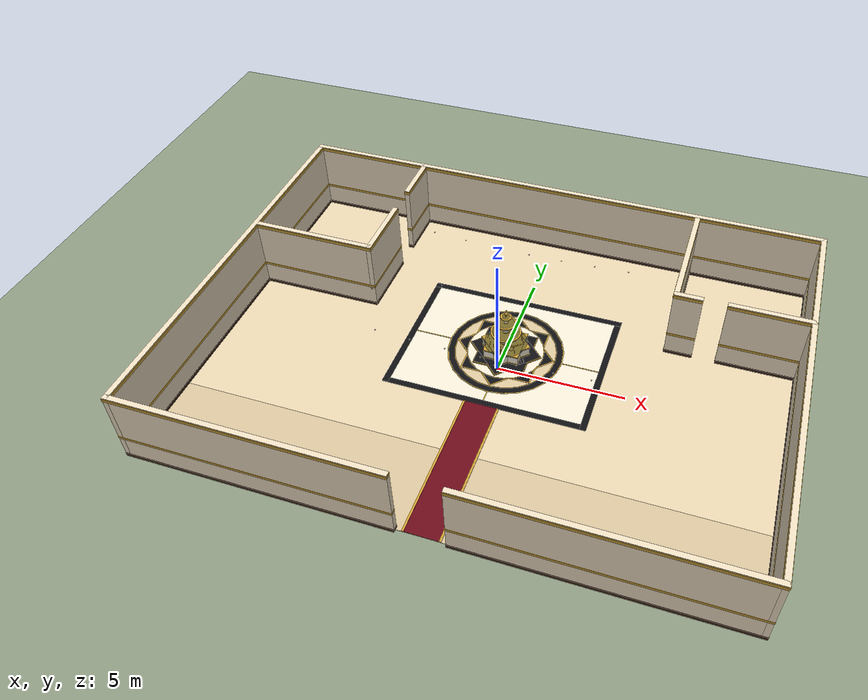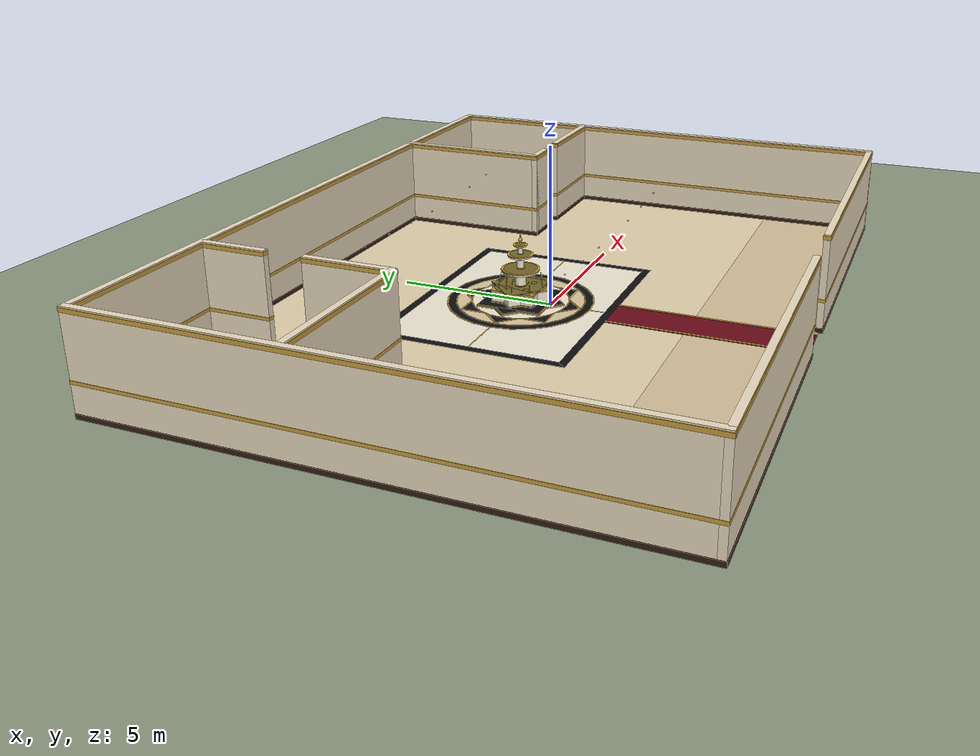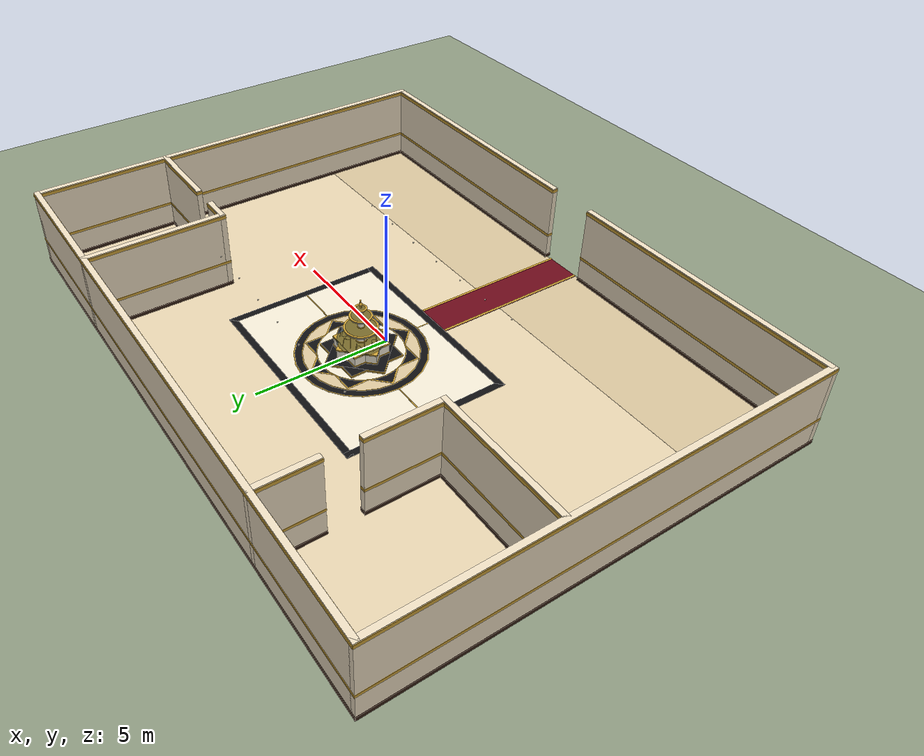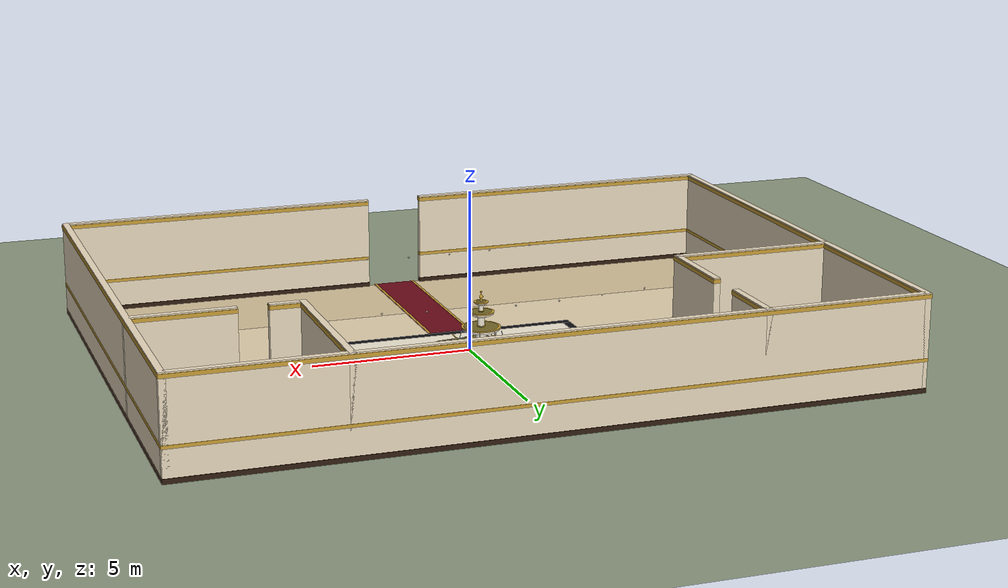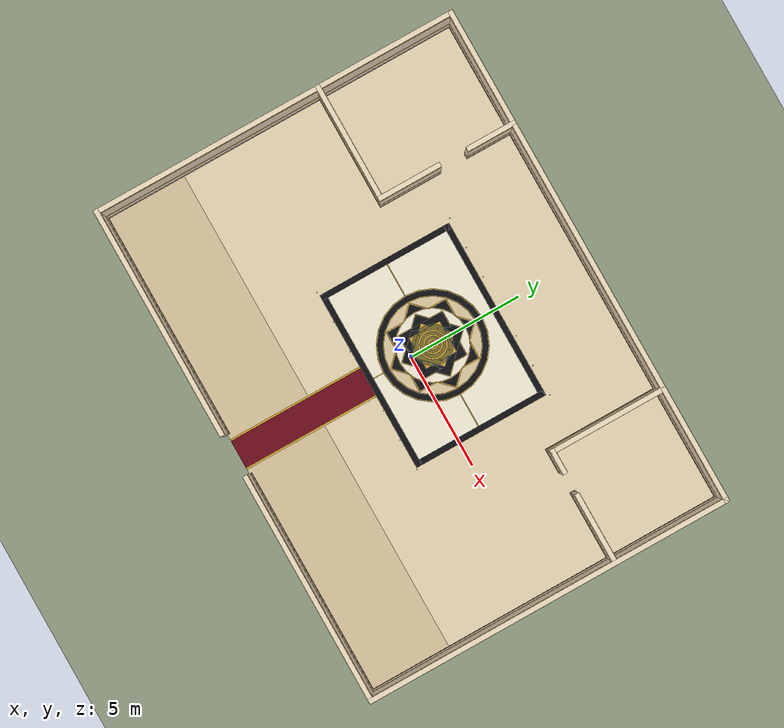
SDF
<sdf version="1.9">
 <world name="dar_tunibot">
  <model name="ground_plane">
   <static>true</static>
   <link name="link">
    <collision name="collision">
     <geometry><plane><normal>0 0 1</normal><size>60 60</size></plane></geometry>
    </collision>
    <visual name="visual">
     <geometry><plane><normal>0 0 1</normal><size>60 60</size></plane></geometry>
     <material><ambient>0.55 0.6 0.5 1</ambient><diffuse>0.55 0.6 0.5 1</diffuse></material>
    </visual>
   </link>
  </model>
  <model name="floors">
   <static>true</static>
   <link name="link">
    <visual name="floor_v">
     <pose>0.000 0.000 0.005 0.0000 0.0000 0.0000</pose>
     <geometry><box><size>22.000 16.000 0.010</size></box></geometry>
     <material>
      <ambient>0.9 0.83 0.69 1</ambient>
      <diffuse>0.9 0.83 0.69 1</diffuse>
      <specular>0.1 0.1 0.1 1</specular>
     </material>
    </visual>
    <visual name="terrace_v">
     <pose>0.000 -6.200 0.007 0.0000 0.0000 0.0000</pose>
     <geometry><box><size>22.000 3.600 0.010</size></box></geometry>
     <material>
      <ambient>0.84 0.76 0.61 1</ambient>
      <diffuse>0.84 0.76 0.61 1</diffuse>
      <specular>0.1 0.1 0.1 1</specular>
     </material>
    </visual>
    <visual name="court_ivory_v">
     <pose>0.000 1.000 0.011 0.0000 0.0000 0.0000</pose>
     <geometry><box><size>8.000 6.000 0.002</size></box></geometry>
     <material>
      <ambient>0.95 0.92 0.84 1</ambient>
      <diffuse>0.95 0.92 0.84 1</diffuse>
      <specular>0.1 0.1 0.1 1</specular>
     </material>
    </visual>
    <visual name="court_border0_v">
     <pose>0.000 3.875 0.013 0.0000 0.0000 0.0000</pose>
     <geometry><box><size>8.000 0.250 0.002</size></box></geometry>
     <material>
      <ambient>0.06 0.06 0.07 1</ambient>
      <diffuse>0.06 0.06 0.07 1</diffuse>
      <specular>0.1 0.1 0.1 1</specular>
     </material>
    </visual>
    <visual name="court_border1_v">
     <pose>0.000 -1.875 0.013 0.0000 0.0000 0.0000</pose>
     <geometry><box><size>8.000 0.250 0.002</size></box></geometry>
     <material>
      <ambient>0.06 0.06 0.07 1</ambient>
      <diffuse>0.06 0.06 0.07 1</diffuse>
      <specular>0.1 0.1 0.1 1</specular>
     </material>
    </visual>
    <visual name="court_border2_v">
     <pose>-3.875 1.000 0.013 0.0000 0.0000 0.0000</pose>
     <geometry><box><size>0.250 6.000 0.002</size></box></geometry>
     <material>
      <ambient>0.06 0.06 0.07 1</ambient>
      <diffuse>0.06 0.06 0.07 1</diffuse>
      <specular>0.1 0.1 0.1 1</specular>
     </material>
    </visual>
    <visual name="court_border3_v">
     <pose>3.875 1.000 0.013 0.0000 0.0000 0.0000</pose>
     <geometry><box><size>0.250 6.000 0.002</size></box></geometry>
     <material>
      <ambient>0.06 0.06 0.07 1</ambient>
      <diffuse>0.06 0.06 0.07 1</diffuse>
      <specular>0.1 0.1 0.1 1</specular>
     </material>
    </visual>
    <visual name="court_ray0_v">
     <pose>1.875 1.000 0.013 0.0000 0.0000 0.0000</pose>
     <geometry><box><size>3.750 0.040 0.002</size></box></geometry>
     <material>
      <ambient>0.8 0.63 0.21 1</ambient>
      <diffuse>0.8 0.63 0.21 1</diffuse>
      <specular>0.1 0.1 0.1 1</specular>
     </material>
    </visual>
    <visual name="court_ray1_v">
     <pose>-1.875 1.000 0.013 0.0000 0.0000 3.1416</pose>
     <geometry><box><size>3.750 0.040 0.002</size></box></geometry>
     <material>
      <ambient>0.8 0.63 0.21 1</ambient>
      <diffuse>0.8 0.63 0.21 1</diffuse>
      <specular>0.1 0.1 0.1 1</specular>
     </material>
    </visual>
    <visual name="court_ray2_v">
     <pose>0.000 2.375 0.013 0.0000 0.0000 1.5708</pose>
     <geometry><box><size>2.750 0.040 0.002</size></box></geometry>
     <material>
      <ambient>0.8 0.63 0.21 1</ambient>
      <diffuse>0.8 0.63 0.21 1</diffuse>
      <specular>0.1 0.1 0.1 1</specular>
     </material>
    </visual>
    <visual name="court_ray3_v">
     <pose>0.000 -0.375 0.013 0.0000 0.0000 -1.5708</pose>
     <geometry><box><size>2.750 0.040 0.002</size></box></geometry>
     <material>
      <ambient>0.8 0.63 0.21 1</ambient>
      <diffuse>0.8 0.63 0.21 1</diffuse>
      <specular>0.1 0.1 0.1 1</specular>
     </material>
    </visual>
    <visual name="medallion0_v">
     <pose>0.000 1.000 0.015 0.0000 0.0000 0.0000</pose>
     <geometry><cylinder><radius>2.300</radius><length>0.002</length></cylinder></geometry>
     <material>
      <ambient>0.8 0.63 0.21 1</ambient>
      <diffuse>0.8 0.63 0.21 1</diffuse>
      <specular>0.1 0.1 0.1 1</specular>
     </material>
    </visual>
    <visual name="medallion1_v">
     <pose>0.000 1.000 0.017 0.0000 0.0000 0.0000</pose>
     <geometry><cylinder><radius>2.260</radius><length>0.002</length></cylinder></geometry>
     <material>
      <ambient>0.06 0.06 0.07 1</ambient>
      <diffuse>0.06 0.06 0.07 1</diffuse>
      <specular>0.1 0.1 0.1 1</specular>
     </material>
    </visual>
    <visual name="medallion2_v">
     <pose>0.000 1.000 0.019 0.0000 0.0000 0.0000</pose>
     <geometry><cylinder><radius>2.020</radius><length>0.002</length></cylinder></geometry>
     <material>
      <ambient>0.8 0.63 0.21 1</ambient>
      <diffuse>0.8 0.63 0.21 1</diffuse>
      <specular>0.1 0.1 0.1 1</specular>
     </material>
    </visual>
    <visual name="medallion3_v">
     <pose>0.000 1.000 0.021 0.0000 0.0000 0.0000</pose>
     <geometry><cylinder><radius>1.990</radius><length>0.002</length></cylinder></geometry>
     <material>
      <ambient>0.86 0.78 0.62 1</ambient>
      <diffuse>0.86 0.78 0.62 1</diffuse>
      <specular>0.1 0.1 0.1 1</specular>
     </material>
    </visual>
    <visual name="star0_0_v">
     <pose>0.000 1.000 0.023 0.0000 0.0000 0.0000</pose>
     <geometry><box><size>2.800 2.800 0.002</size></box></geometry>
     <material>
      <ambient>0.8 0.63 0.21 1</ambient>
      <diffuse>0.8 0.63 0.21 1</diffuse>
      <specular>0.1 0.1 0.1 1</specular>
     </material>
    </visual>
    <visual name="star0_1_v">
     <pose>0.000 1.000 0.023 0.0000 0.0000 0.7854</pose>
     <geometry><box><size>2.800 2.800 0.002</size></box></geometry>
     <material>
      <ambient>0.8 0.63 0.21 1</ambient>
      <diffuse>0.8 0.63 0.21 1</diffuse>
      <specular>0.1 0.1 0.1 1</specular>
     </material>
    </visual>
    <visual name="star1_0_v">
     <pose>0.000 1.000 0.025 0.0000 0.0000 0.0000</pose>
     <geometry><box><size>2.700 2.700 0.002</size></box></geometry>
     <material>
      <ambient>0.06 0.06 0.07 1</ambient>
      <diffuse>0.06 0.06 0.07 1</diffuse>
      <specular>0.1 0.1 0.1 1</specular>
     </material>
    </visual>
    <visual name="star1_1_v">
     <pose>0.000 1.000 0.025 0.0000 0.0000 0.7854</pose>
     <geometry><box><size>2.700 2.700 0.002</size></box></geometry>
     <material>
      <ambient>0.06 0.06 0.07 1</ambient>
      <diffuse>0.06 0.06 0.07 1</diffuse>
      <specular>0.1 0.1 0.1 1</specular>
     </material>
    </visual>
    <visual name="medallion_gold_ring_v">
     <pose>0.000 1.000 0.027 0.0000 0.0000 0.0000</pose>
     <geometry><cylinder><radius>1.530</radius><length>0.002</length></cylinder></geometry>
     <material>
      <ambient>0.8 0.63 0.21 1</ambient>
      <diffuse>0.8 0.63 0.21 1</diffuse>
      <specular>0.1 0.1 0.1 1</specular>
     </material>
    </visual>
    <visual name="medallion_centre_v">
     <pose>0.000 1.000 0.029 0.0000 0.0000 0.0000</pose>
     <geometry><cylinder><radius>1.500</radius><length>0.002</length></cylinder></geometry>
     <material>
      <ambient>0.95 0.92 0.84 1</ambient>
      <diffuse>0.95 0.92 0.84 1</diffuse>
      <specular>0.1 0.1 0.1 1</specular>
     </material>
    </visual>
    <visual name="carpet_v">
     <pose>0.000 -5.000 0.020 0.0000 0.0000 0.0000</pose>
     <geometry><box><size>1.400 6.000 0.020</size></box></geometry>
     <material>
      <ambient>0.42 0.04 0.1 1</ambient>
      <diffuse>0.42 0.04 0.1 1</diffuse>
      <specular>0.1 0.1 0.1 1</specular>
     </material>
    </visual>
    <visual name="carpet_edge_-1_v">
     <pose>-0.660 -5.000 0.031 0.0000 0.0000 0.0000</pose>
     <geometry><box><size>0.080 6.000 0.020</size></box></geometry>
     <material>
      <ambient>0.8 0.63 0.21 1</ambient>
      <diffuse>0.8 0.63 0.21 1</diffuse>
      <specular>0.1 0.1 0.1 1</specular>
     </material>
    </visual>
    <visual name="carpet_edge_1_v">
     <pose>0.660 -5.000 0.031 0.0000 0.0000 0.0000</pose>
     <geometry><box><size>0.080 6.000 0.020</size></box></geometry>
     <material>
      <ambient>0.8 0.63 0.21 1</ambient>
      <diffuse>0.8 0.63 0.21 1</diffuse>
      <specular>0.1 0.1 0.1 1</specular>
     </material>
    </visual>
   </link>
  </model>
  <model name="dar_walls">
   <static>true</static>
   <link name="link">
    <visual name="wall0_v">
     <pose>0.000 8.000 1.500 0.0000 0.0000 0.0000</pose>
     <geometry><box><size>22.200 0.200 3.000</size></box></geometry>
     <material>
      <ambient>0.93 0.87 0.76 1</ambient>
      <diffuse>0.93 0.87 0.76 1</diffuse>
      <specular>0.1 0.1 0.1 1</specular>
     </material>
    </visual>
    <collision name="wall0_c">
     <pose>0.000 8.000 1.500 0.0000 0.0000 0.0000</pose>
     <geometry><box><size>22.200 0.200 3.000</size></box></geometry>
    </collision>
    <visual name="skirting0_v">
     <pose>0.000 8.000 0.075 0.0000 0.0000 0.0000</pose>
     <geometry><box><size>22.210 0.230 0.150</size></box></geometry>
     <material>
      <ambient>0.2 0.12 0.07 1</ambient>
      <diffuse>0.2 0.12 0.07 1</diffuse>
      <specular>0.1 0.1 0.1 1</specular>
     </material>
    </visual>
    <visual name="rail0_v">
     <pose>0.000 8.000 1.000 0.0000 0.0000 0.0000</pose>
     <geometry><box><size>22.210 0.220 0.100</size></box></geometry>
     <material>
      <ambient>0.8 0.63 0.21 1</ambient>
      <diffuse>0.8 0.63 0.21 1</diffuse>
      <specular>0.1 0.1 0.1 1</specular>
     </material>
    </visual>
    <visual name="crown0_v">
     <pose>0.000 8.000 2.900 0.0000 0.0000 0.0000</pose>
     <geometry><box><size>22.210 0.230 0.120</size></box></geometry>
     <material>
      <ambient>0.8 0.63 0.21 1</ambient>
      <diffuse>0.8 0.63 0.21 1</diffuse>
      <specular>0.1 0.1 0.1 1</specular>
     </material>
    </visual>
    <visual name="wall1_v">
     <pose>-11.000 0.000 1.500 0.0000 0.0000 1.5708</pose>
     <geometry><box><size>16.200 0.200 3.000</size></box></geometry>
     <material>
      <ambient>0.93 0.87 0.76 1</ambient>
      <diffuse>0.93 0.87 0.76 1</diffuse>
      <specular>0.1 0.1 0.1 1</specular>
     </material>
    </visual>
    <collision name="wall1_c">
     <pose>-11.000 0.000 1.500 0.0000 0.0000 1.5708</pose>
     <geometry><box><size>16.200 0.200 3.000</size></box></geometry>
    </collision>
    <visual name="skirting1_v">
     <pose>-11.000 0.000 0.075 0.0000 0.0000 1.5708</pose>
     <geometry><box><size>16.210 0.230 0.150</size></box></geometry>
     <material>
      <ambient>0.2 0.12 0.07 1</ambient>
      <diffuse>0.2 0.12 0.07 1</diffuse>
      <specular>0.1 0.1 0.1 1</specular>
     </material>
    </visual>
    <visual name="rail1_v">
     <pose>-11.000 0.000 1.000 0.0000 0.0000 1.5708</pose>
     <geometry><box><size>16.210 0.220 0.100</size></box></geometry>
     <material>
      <ambient>0.8 0.63 0.21 1</ambient>
      <diffuse>0.8 0.63 0.21 1</diffuse>
      <specular>0.1 0.1 0.1 1</specular>
     </material>
    </visual>
    <visual name="crown1_v">
     <pose>-11.000 0.000 2.900 0.0000 0.0000 1.5708</pose>
     <geometry><box><size>16.210 0.230 0.120</size></box></geometry>
     <material>
      <ambient>0.8 0.63 0.21 1</ambient>
      <diffuse>0.8 0.63 0.21 1</diffuse>
      <specular>0.1 0.1 0.1 1</specular>
     </material>
    </visual>
    <visual name="wall2_v">
     <pose>11.000 0.000 1.500 0.0000 0.0000 1.5708</pose>
     <geometry><box><size>16.200 0.200 3.000</size></box></geometry>
     <material>
      <ambient>0.93 0.87 0.76 1</ambient>
      <diffuse>0.93 0.87 0.76 1</diffuse>
      <specular>0.1 0.1 0.1 1</specular>
     </material>
    </visual>
    <collision name="wall2_c">
     <pose>11.000 0.000 1.500 0.0000 0.0000 1.5708</pose>
     <geometry><box><size>16.200 0.200 3.000</size></box></geometry>
    </collision>
    <visual name="skirting2_v">
     <pose>11.000 0.000 0.075 0.0000 0.0000 1.5708</pose>
     <geometry><box><size>16.210 0.230 0.150</size></box></geometry>
     <material>
      <ambient>0.2 0.12 0.07 1</ambient>
      <diffuse>0.2 0.12 0.07 1</diffuse>
      <specular>0.1 0.1 0.1 1</specular>
     </material>
    </visual>
    <visual name="rail2_v">
     <pose>11.000 0.000 1.000 0.0000 0.0000 1.5708</pose>
     <geometry><box><size>16.210 0.220 0.100</size></box></geometry>
     <material>
      <ambient>0.8 0.63 0.21 1</ambient>
      <diffuse>0.8 0.63 0.21 1</diffuse>
      <specular>0.1 0.1 0.1 1</specular>
     </material>
    </visual>
    <visual name="crown2_v">
     <pose>11.000 0.000 2.900 0.0000 0.0000 1.5708</pose>
     <geometry><box><size>16.210 0.230 0.120</size></box></geometry>
     <material>
      <ambient>0.8 0.63 0.21 1</ambient>
      <diffuse>0.8 0.63 0.21 1</diffuse>
      <specular>0.1 0.1 0.1 1</specular>
     </material>
    </visual>
    <visual name="wall3_v">
     <pose>-6.000 -8.000 1.500 0.0000 0.0000 0.0000</pose>
     <geometry><box><size>10.200 0.200 3.000</size></box></geometry>
     <material>
      <ambient>0.93 0.87 0.76 1</ambient>
      <diffuse>0.93 0.87 0.76 1</diffuse>
      <specular>0.1 0.1 0.1 1</specular>
     </material>
    </visual>
    <collision name="wall3_c">
     <pose>-6.000 -8.000 1.500 0.0000 0.0000 0.0000</pose>
     <geometry><box><size>10.200 0.200 3.000</size></box></geometry>
    </collision>
    <visual name="skirting3_v">
     <pose>-6.000 -8.000 0.075 0.0000 0.0000 0.0000</pose>
     <geometry><box><size>10.210 0.230 0.150</size></box></geometry>
     <material>
      <ambient>0.2 0.12 0.07 1</ambient>
      <diffuse>0.2 0.12 0.07 1</diffuse>
      <specular>0.1 0.1 0.1 1</specular>
     </material>
    </visual>
    <visual name="rail3_v">
     <pose>-6.000 -8.000 1.000 0.0000 0.0000 0.0000</pose>
     <geometry><box><size>10.210 0.220 0.100</size></box></geometry>
     <material>
      <ambient>0.8 0.63 0.21 1</ambient>
      <diffuse>0.8 0.63 0.21 1</diffuse>
      <specular>0.1 0.1 0.1 1</specular>
     </material>
    </visual>
    <visual name="crown3_v">
     <pose>-6.000 -8.000 2.900 0.0000 0.0000 0.0000</pose>
     <geometry><box><size>10.210 0.230 0.120</size></box></geometry>
     <material>
      <ambient>0.8 0.63 0.21 1</ambient>
      <diffuse>0.8 0.63 0.21 1</diffuse>
      <specular>0.1 0.1 0.1 1</specular>
     </material>
    </visual>
    <visual name="wall4_v">
     <pose>6.000 -8.000 1.500 0.0000 0.0000 0.0000</pose>
     <geometry><box><size>10.200 0.200 3.000</size></box></geometry>
     <material>
      <ambient>0.93 0.87 0.76 1</ambient>
      <diffuse>0.93 0.87 0.76 1</diffuse>
      <specular>0.1 0.1 0.1 1</specular>
     </material>
    </visual>
    <collision name="wall4_c">
     <pose>6.000 -8.000 1.500 0.0000 0.0000 0.0000</pose>
     <geometry><box><size>10.200 0.200 3.000</size></box></geometry>
    </collision>
    <visual name="skirting4_v">
     <pose>6.000 -8.000 0.075 0.0000 0.0000 0.0000</pose>
     <geometry><box><size>10.210 0.230 0.150</size></box></geometry>
     <material>
      <ambient>0.2 0.12 0.07 1</ambient>
      <diffuse>0.2 0.12 0.07 1</diffuse>
      <specular>0.1 0.1 0.1 1</specular>
     </material>
    </visual>
    <visual name="rail4_v">
     <pose>6.000 -8.000 1.000 0.0000 0.0000 0.0000</pose>
     <geometry><box><size>10.210 0.220 0.100</size></box></geometry>
     <material>
      <ambient>0.8 0.63 0.21 1</ambient>
      <diffuse>0.8 0.63 0.21 1</diffuse>
      <specular>0.1 0.1 0.1 1</specular>
     </material>
    </visual>
    <visual name="crown4_v">
     <pose>6.000 -8.000 2.900 0.0000 0.0000 0.0000</pose>
     <geometry><box><size>10.210 0.230 0.120</size></box></geometry>
     <material>
      <ambient>0.8 0.63 0.21 1</ambient>
      <diffuse>0.8 0.63 0.21 1</diffuse>
      <specular>0.1 0.1 0.1 1</specular>
     </material>
    </visual>
    <visual name="wall5_v">
     <pose>-8.500 2.000 1.500 0.0000 0.0000 0.0000</pose>
     <geometry><box><size>5.200 0.200 3.000</size></box></geometry>
     <material>
      <ambient>0.93 0.87 0.76 1</ambient>
      <diffuse>0.93 0.87 0.76 1</diffuse>
      <specular>0.1 0.1 0.1 1</specular>
     </material>
    </visual>
    <collision name="wall5_c">
     <pose>-8.500 2.000 1.500 0.0000 0.0000 0.0000</pose>
     <geometry><box><size>5.200 0.200 3.000</size></box></geometry>
    </collision>
    <visual name="skirting5_v">
     <pose>-8.500 2.000 0.075 0.0000 0.0000 0.0000</pose>
     <geometry><box><size>5.210 0.230 0.150</size></box></geometry>
     <material>
      <ambient>0.2 0.12 0.07 1</ambient>
      <diffuse>0.2 0.12 0.07 1</diffuse>
      <specular>0.1 0.1 0.1 1</specular>
     </material>
    </visual>
    <visual name="rail5_v">
     <pose>-8.500 2.000 1.000 0.0000 0.0000 0.0000</pose>
     <geometry><box><size>5.210 0.220 0.100</size></box></geometry>
     <material>
      <ambient>0.8 0.63 0.21 1</ambient>
      <diffuse>0.8 0.63 0.21 1</diffuse>
      <specular>0.1 0.1 0.1 1</specular>
     </material>
    </visual>
    <visual name="crown5_v">
     <pose>-8.500 2.000 2.900 0.0000 0.0000 0.0000</pose>
     <geometry><box><size>5.210 0.230 0.120</size></box></geometry>
     <material>
      <ambient>0.8 0.63 0.21 1</ambient>
      <diffuse>0.8 0.63 0.21 1</diffuse>
      <specular>0.1 0.1 0.1 1</specular>
     </material>
    </visual>
    <visual name="wall6_v">
     <pose>-6.000 3.300 1.500 0.0000 0.0000 1.5708</pose>
     <geometry><box><size>2.800 0.200 3.000</size></box></geometry>
     <material>
      <ambient>0.93 0.87 0.76 1</ambient>
      <diffuse>0.93 0.87 0.76 1</diffuse>
      <specular>0.1 0.1 0.1 1</specular>
     </material>
    </visual>
    <collision name="wall6_c">
     <pose>-6.000 3.300 1.500 0.0000 0.0000 1.5708</pose>
     <geometry><box><size>2.800 0.200 3.000</size></box></geometry>
    </collision>
    <visual name="skirting6_v">
     <pose>-6.000 3.300 0.075 0.0000 0.0000 1.5708</pose>
     <geometry><box><size>2.810 0.230 0.150</size></box></geometry>
     <material>
      <ambient>0.2 0.12 0.07 1</ambient>
      <diffuse>0.2 0.12 0.07 1</diffuse>
      <specular>0.1 0.1 0.1 1</specular>
     </material>
    </visual>
    <visual name="rail6_v">
     <pose>-6.000 3.300 1.000 0.0000 0.0000 1.5708</pose>
     <geometry><box><size>2.810 0.220 0.100</size></box></geometry>
     <material>
      <ambient>0.8 0.63 0.21 1</ambient>
      <diffuse>0.8 0.63 0.21 1</diffuse>
      <specular>0.1 0.1 0.1 1</specular>
     </material>
    </visual>
    <visual name="crown6_v">
     <pose>-6.000 3.300 2.900 0.0000 0.0000 1.5708</pose>
     <geometry><box><size>2.810 0.230 0.120</size></box></geometry>
     <material>
      <ambient>0.8 0.63 0.21 1</ambient>
      <diffuse>0.8 0.63 0.21 1</diffuse>
      <specular>0.1 0.1 0.1 1</specular>
     </material>
    </visual>
    <visual name="wall7_v">
     <pose>-6.000 7.000 1.500 0.0000 0.0000 1.5708</pose>
     <geometry><box><size>2.200 0.200 3.000</size></box></geometry>
     <material>
      <ambient>0.93 0.87 0.76 1</ambient>
      <diffuse>0.93 0.87 0.76 1</diffuse>
      <specular>0.1 0.1 0.1 1</specular>
     </material>
    </visual>
    <collision name="wall7_c">
     <pose>-6.000 7.000 1.500 0.0000 0.0000 1.5708</pose>
     <geometry><box><size>2.200 0.200 3.000</size></box></geometry>
    </collision>
    <visual name="skirting7_v">
     <pose>-6.000 7.000 0.075 0.0000 0.0000 1.5708</pose>
     <geometry><box><size>2.210 0.230 0.150</size></box></geometry>
     <material>
      <ambient>0.2 0.12 0.07 1</ambient>
      <diffuse>0.2 0.12 0.07 1</diffuse>
      <specular>0.1 0.1 0.1 1</specular>
     </material>
    </visual>
    <visual name="rail7_v">
     <pose>-6.000 7.000 1.000 0.0000 0.0000 1.5708</pose>
     <geometry><box><size>2.210 0.220 0.100</size></box></geometry>
     <material>
      <ambient>0.8 0.63 0.21 1</ambient>
      <diffuse>0.8 0.63 0.21 1</diffuse>
      <specular>0.1 0.1 0.1 1</specular>
     </material>
    </visual>
    <visual name="crown7_v">
     <pose>-6.000 7.000 2.900 0.0000 0.0000 1.5708</pose>
     <geometry><box><size>2.210 0.230 0.120</size></box></geometry>
     <material>
      <ambient>0.8 0.63 0.21 1</ambient>
      <diffuse>0.8 0.63 0.21 1</diffuse>
      <specular>0.1 0.1 0.1 1</specular>
     </material>
    </visual>
    <visual name="wall8_v">
     <pose>6.000 5.500 1.500 0.0000 0.0000 1.5708</pose>
     <geometry><box><size>5.200 0.200 3.000</size></box></geometry>
     <material>
      <ambient>0.93 0.87 0.76 1</ambient>
      <diffuse>0.93 0.87 0.76 1</diffuse>
      <specular>0.1 0.1 0.1 1</specular>
     </material>
    </visual>
    <collision name="wall8_c">
     <pose>6.000 5.500 1.500 0.0000 0.0000 1.5708</pose>
     <geometry><box><size>5.200 0.200 3.000</size></box></geometry>
    </collision>
    <visual name="skirting8_v">
     <pose>6.000 5.500 0.075 0.0000 0.0000 1.5708</pose>
     <geometry><box><size>5.210 0.230 0.150</size></box></geometry>
     <material>
      <ambient>0.2 0.12 0.07 1</ambient>
      <diffuse>0.2 0.12 0.07 1</diffuse>
      <specular>0.1 0.1 0.1 1</specular>
     </material>
    </visual>
    <visual name="rail8_v">
     <pose>6.000 5.500 1.000 0.0000 0.0000 1.5708</pose>
     <geometry><box><size>5.210 0.220 0.100</size></box></geometry>
     <material>
      <ambient>0.8 0.63 0.21 1</ambient>
      <diffuse>0.8 0.63 0.21 1</diffuse>
      <specular>0.1 0.1 0.1 1</specular>
     </material>
    </visual>
    <visual name="crown8_v">
     <pose>6.000 5.500 2.900 0.0000 0.0000 1.5708</pose>
     <geometry><box><size>5.210 0.230 0.120</size></box></geometry>
     <material>
      <ambient>0.8 0.63 0.21 1</ambient>
      <diffuse>0.8 0.63 0.21 1</diffuse>
      <specular>0.1 0.1 0.1 1</specular>
     </material>
    </visual>
    <visual name="wall9_v">
     <pose>6.450 3.000 1.500 0.0000 0.0000 0.0000</pose>
     <geometry><box><size>1.100 0.200 3.000</size></box></geometry>
     <material>
      <ambient>0.93 0.87 0.76 1</ambient>
      <diffuse>0.93 0.87 0.76 1</diffuse>
      <specular>0.1 0.1 0.1 1</specular>
     </material>
    </visual>
    <collision name="wall9_c">
     <pose>6.450 3.000 1.500 0.0000 0.0000 0.0000</pose>
     <geometry><box><size>1.100 0.200 3.000</size></box></geometry>
    </collision>
    <visual name="skirting9_v">
     <pose>6.450 3.000 0.075 0.0000 0.0000 0.0000</pose>
     <geometry><box><size>1.110 0.230 0.150</size></box></geometry>
     <material>
      <ambient>0.2 0.12 0.07 1</ambient>
      <diffuse>0.2 0.12 0.07 1</diffuse>
      <specular>0.1 0.1 0.1 1</specular>
     </material>
    </visual>
    <visual name="rail9_v">
     <pose>6.450 3.000 1.000 0.0000 0.0000 0.0000</pose>
     <geometry><box><size>1.110 0.220 0.100</size></box></geometry>
     <material>
      <ambient>0.8 0.63 0.21 1</ambient>
      <diffuse>0.8 0.63 0.21 1</diffuse>
      <specular>0.1 0.1 0.1 1</specular>
     </material>
    </visual>
    <visual name="crown9_v">
     <pose>6.450 3.000 2.900 0.0000 0.0000 0.0000</pose>
     <geometry><box><size>1.110 0.230 0.120</size></box></geometry>
     <material>
      <ambient>0.8 0.63 0.21 1</ambient>
      <diffuse>0.8 0.63 0.21 1</diffuse>
      <specular>0.1 0.1 0.1 1</specular>
     </material>
    </visual>
    <visual name="wall10_v">
     <pose>9.500 3.000 1.500 0.0000 0.0000 0.0000</pose>
     <geometry><box><size>3.200 0.200 3.000</size></box></geometry>
     <material>
      <ambient>0.93 0.87 0.76 1</ambient>
      <diffuse>0.93 0.87 0.76 1</diffuse>
      <specular>0.1 0.1 0.1 1</specular>
     </material>
    </visual>
    <collision name="wall10_c">
     <pose>9.500 3.000 1.500 0.0000 0.0000 0.0000</pose>
     <geometry><box><size>3.200 0.200 3.000</size></box></geometry>
    </collision>
    <visual name="skirting10_v">
     <pose>9.500 3.000 0.075 0.0000 0.0000 0.0000</pose>
     <geometry><box><size>3.210 0.230 0.150</size></box></geometry>
     <material>
      <ambient>0.2 0.12 0.07 1</ambient>
      <diffuse>0.2 0.12 0.07 1</diffuse>
      <specular>0.1 0.1 0.1 1</specular>
     </material>
    </visual>
    <visual name="rail10_v">
     <pose>9.500 3.000 1.000 0.0000 0.0000 0.0000</pose>
     <geometry><box><size>3.210 0.220 0.100</size></box></geometry>
     <material>
      <ambient>0.8 0.63 0.21 1</ambient>
      <diffuse>0.8 0.63 0.21 1</diffuse>
      <specular>0.1 0.1 0.1 1</specular>
     </material>
    </visual>
    <visual name="crown10_v">
     <pose>9.500 3.000 2.900 0.0000 0.0000 0.0000</pose>
     <geometry><box><size>3.210 0.230 0.120</size></box></geometry>
     <material>
      <ambient>0.8 0.63 0.21 1</ambient>
      <diffuse>0.8 0.63 0.21 1</diffuse>
      <specular>0.1 0.1 0.1 1</specular>
     </material>
    </visual>
   </link>
  </model>
  <model name="fountain">
   <static>true</static>
   <pose>0.0 1.0 0 0 0 0</pose>
   <link name="link">
    <visual name="step_trim_0_v">
     <pose>0.000 0.000 0.055 0.0000 0.0000 0.0000</pose>
     <geometry><box><size>2.060 2.060 0.050</size></box></geometry>
     <material>
      <ambient>0.8 0.63 0.21 1</ambient>
      <diffuse>0.8 0.63 0.21 1</diffuse>
      <specular>0.1 0.1 0.1 1</specular>
     </material>
    </visual>
    <visual name="step_trim_1_v">
     <pose>0.000 0.000 0.055 0.0000 0.0000 0.7854</pose>
     <geometry><box><size>2.060 2.060 0.050</size></box></geometry>
     <material>
      <ambient>0.8 0.63 0.21 1</ambient>
      <diffuse>0.8 0.63 0.21 1</diffuse>
      <specular>0.1 0.1 0.1 1</specular>
     </material>
    </visual>
    <visual name="step_0_v">
     <pose>0.000 0.000 0.065 0.0000 0.0000 0.0000</pose>
     <geometry><box><size>2.000 2.000 0.070</size></box></geometry>
     <material>
      <ambient>0.06 0.06 0.07 1</ambient>
      <diffuse>0.06 0.06 0.07 1</diffuse>
      <specular>0.1 0.1 0.1 1</specular>
     </material>
    </visual>
    <visual name="step_1_v">
     <pose>0.000 0.000 0.065 0.0000 0.0000 0.7854</pose>
     <geometry><box><size>2.000 2.000 0.070</size></box></geometry>
     <material>
      <ambient>0.06 0.06 0.07 1</ambient>
      <diffuse>0.06 0.06 0.07 1</diffuse>
      <specular>0.1 0.1 0.1 1</specular>
     </material>
    </visual>
    <visual name="basin_0_v">
     <pose>0.000 0.000 0.250 0.0000 0.0000 0.0000</pose>
     <geometry><box><size>1.360 1.360 0.500</size></box></geometry>
     <material>
      <ambient>0.95 0.92 0.84 1</ambient>
      <diffuse>0.95 0.92 0.84 1</diffuse>
      <specular>0.1 0.1 0.1 1</specular>
     </material>
    </visual>
    <collision name="basin_0_c">
     <pose>0.000 0.000 0.250 0.0000 0.0000 0.0000</pose>
     <geometry><box><size>1.360 1.360 0.500</size></box></geometry>
    </collision>
    <visual name="basin_1_v">
     <pose>0.000 0.000 0.250 0.0000 0.0000 0.7854</pose>
     <geometry><box><size>1.360 1.360 0.500</size></box></geometry>
     <material>
      <ambient>0.95 0.92 0.84 1</ambient>
      <diffuse>0.95 0.92 0.84 1</diffuse>
      <specular>0.1 0.1 0.1 1</specular>
     </material>
    </visual>
    <collision name="basin_1_c">
     <pose>0.000 0.000 0.250 0.0000 0.0000 0.7854</pose>
     <geometry><box><size>1.360 1.360 0.500</size></box></geometry>
    </collision>
    <visual name="basin_foot_0_v">
     <pose>0.000 0.000 0.120 0.0000 0.0000 0.0000</pose>
     <geometry><box><size>1.400 1.400 0.040</size></box></geometry>
     <material>
      <ambient>0.8 0.63 0.21 1</ambient>
      <diffuse>0.8 0.63 0.21 1</diffuse>
      <specular>0.1 0.1 0.1 1</specular>
     </material>
    </visual>
    <visual name="basin_foot_1_v">
     <pose>0.000 0.000 0.120 0.0000 0.0000 0.7854</pose>
     <geometry><box><size>1.400 1.400 0.040</size></box></geometry>
     <material>
      <ambient>0.8 0.63 0.21 1</ambient>
      <diffuse>0.8 0.63 0.21 1</diffuse>
      <specular>0.1 0.1 0.1 1</specular>
     </material>
    </visual>
    <visual name="basin_rim_0_v">
     <pose>0.000 0.000 0.477 0.0000 0.0000 0.0000</pose>
     <geometry><box><size>1.400 1.400 0.055</size></box></geometry>
     <material>
      <ambient>0.8 0.63 0.21 1</ambient>
      <diffuse>0.8 0.63 0.21 1</diffuse>
      <specular>0.1 0.1 0.1 1</specular>
     </material>
    </visual>
    <visual name="basin_rim_1_v">
     <pose>0.000 0.000 0.477 0.0000 0.0000 0.7854</pose>
     <geometry><box><size>1.400 1.400 0.055</size></box></geometry>
     <material>
      <ambient>0.8 0.63 0.21 1</ambient>
      <diffuse>0.8 0.63 0.21 1</diffuse>
      <specular>0.1 0.1 0.1 1</specular>
     </material>
    </visual>
    <visual name="water_v">
     <pose>0.000 0.000 0.516 0.0000 0.0000 0.0000</pose>
     <geometry><cylinder><radius>0.840</radius><length>0.008</length></cylinder></geometry>
     <transparency>0.6</transparency>
     <material>
      <ambient>0.01 0.13 0.15 1</ambient>
      <diffuse>0.01 0.13 0.15 1</diffuse>
      <specular>0.1 0.1 0.1 1</specular>
      <emissive>0.01 0.05 0.06 1</emissive>
     </material>
    </visual>
    <visual name="pedestal1_v">
     <pose>0.000 0.000 0.750 0.0000 0.0000 0.0000</pose>
     <geometry><cylinder><radius>0.170</radius><length>0.500</length></cylinder></geometry>
     <material>
      <ambient>0.95 0.92 0.84 1</ambient>
      <diffuse>0.95 0.92 0.84 1</diffuse>
      <specular>0.1 0.1 0.1 1</specular>
     </material>
    </visual>
    <collision name="pedestal1_c">
     <pose>0.000 0.000 0.750 0.0000 0.0000 0.0000</pose>
     <geometry><cylinder><radius>0.170</radius><length>0.500</length></cylinder></geometry>
    </collision>
    <visual name="pedestal1_collar_v">
     <pose>0.000 0.000 0.530 0.0000 0.0000 0.0000</pose>
     <geometry><cylinder><radius>0.200</radius><length>0.030</length></cylinder></geometry>
     <material>
      <ambient>0.8 0.63 0.21 1</ambient>
      <diffuse>0.8 0.63 0.21 1</diffuse>
      <specular>0.1 0.1 0.1 1</specular>
     </material>
    </visual>
    <visual name="pedestal2_v">
     <pose>0.000 0.000 1.260 0.0000 0.0000 0.0000</pose>
     <geometry><cylinder><radius>0.110</radius><length>0.400</length></cylinder></geometry>
     <material>
      <ambient>0.95 0.92 0.84 1</ambient>
      <diffuse>0.95 0.92 0.84 1</diffuse>
      <specular>0.1 0.1 0.1 1</specular>
     </material>
    </visual>
    <collision name="pedestal2_c">
     <pose>0.000 0.000 1.260 0.0000 0.0000 0.0000</pose>
     <geometry><cylinder><radius>0.110</radius><length>0.400</length></cylinder></geometry>
    </collision>
    <visual name="pedestal2_collar_v">
     <pose>0.000 0.000 1.090 0.0000 0.0000 0.0000</pose>
     <geometry><cylinder><radius>0.130</radius><length>0.030</length></cylinder></geometry>
     <material>
      <ambient>0.8 0.63 0.21 1</ambient>
      <diffuse>0.8 0.63 0.21 1</diffuse>
      <specular>0.1 0.1 0.1 1</specular>
     </material>
    </visual>
    <visual name="pedestal3_v">
     <pose>0.000 0.000 1.670 0.0000 0.0000 0.0000</pose>
     <geometry><cylinder><radius>0.070</radius><length>0.280</length></cylinder></geometry>
     <material>
      <ambient>0.95 0.92 0.84 1</ambient>
      <diffuse>0.95 0.92 0.84 1</diffuse>
      <specular>0.1 0.1 0.1 1</specular>
     </material>
    </visual>
    <collision name="pedestal3_c">
     <pose>0.000 0.000 1.670 0.0000 0.0000 0.0000</pose>
     <geometry><cylinder><radius>0.070</radius><length>0.280</length></cylinder></geometry>
    </collision>
    <visual name="pedestal3_collar_v">
     <pose>0.000 0.000 1.550 0.0000 0.0000 0.0000</pose>
     <geometry><cylinder><radius>0.090</radius><length>0.025</length></cylinder></geometry>
     <material>
      <ambient>0.8 0.63 0.21 1</ambient>
      <diffuse>0.8 0.63 0.21 1</diffuse>
      <specular>0.1 0.1 0.1 1</specular>
     </material>
    </visual>
    <visual name="finial_stem_v">
     <pose>0.000 0.000 1.900 0.0000 0.0000 0.0000</pose>
     <geometry><cylinder><radius>0.030</radius><length>0.100</length></cylinder></geometry>
     <material>
      <ambient>0.8 0.63 0.21 1</ambient>
      <diffuse>0.8 0.63 0.21 1</diffuse>
      <specular>0.1 0.1 0.1 1</specular>
     </material>
    </visual>
    <visual name="finial_ball_v">
     <pose>0.000 0.000 1.990 0.0000 0.0000 0.0000</pose>
     <geometry><sphere><radius>0.060</radius></sphere></geometry>
     <material>
      <ambient>0.8 0.63 0.21 1</ambient>
      <diffuse>0.8 0.63 0.21 1</diffuse>
      <specular>0.1 0.1 0.1 1</specular>
     </material>
    </visual>
    <visual name="finial_spike_v">
     <pose>0.000 0.000 2.080 0.0000 0.0000 0.0000</pose>
     <geometry><cylinder><radius>0.015</radius><length>0.100</length></cylinder></geometry>
     <material>
      <ambient>0.8 0.63 0.21 1</ambient>
      <diffuse>0.8 0.63 0.21 1</diffuse>
      <specular>0.1 0.1 0.1 1</specular>
     </material>
    </visual>
    <visual name="finial_tip_v">
     <pose>0.000 0.000 2.140 0.0000 0.0000 0.0000</pose>
     <geometry><sphere><radius>0.030</radius></sphere></geometry>
     <material>
      <ambient>0.8 0.63 0.21 1</ambient>
      <diffuse>0.8 0.63 0.21 1</diffuse>
      <specular>0.1 0.1 0.1 1</specular>
     </material>
    </visual>
    <visual name="bowl1_under_v">
     <pose>0.000 0.000 0.940 0.0000 0.0000 0.0000</pose>
     <geometry><cylinder><radius>0.320</radius><length>0.080</length></cylinder></geometry>
     <material>
      <ambient>0.95 0.92 0.84 1</ambient>
      <diffuse>0.95 0.92 0.84 1</diffuse>
      <specular>0.1 0.1 0.1 1</specular>
     </material>
    </visual>
    <visual name="bowl1_v">
     <pose>0.000 0.000 1.020 0.0000 0.0000 0.0000</pose>
     <geometry><cylinder><radius>0.580</radius><length>0.080</length></cylinder></geometry>
     <material>
      <ambient>0.95 0.92 0.84 1</ambient>
      <diffuse>0.95 0.92 0.84 1</diffuse>
      <specular>0.1 0.1 0.1 1</specular>
     </material>
    </visual>
    <collision name="bowl1_c">
     <pose>0.000 0.000 1.020 0.0000 0.0000 0.0000</pose>
     <geometry><cylinder><radius>0.580</radius><length>0.080</length></cylinder></geometry>
    </collision>
    <visual name="bowl1_trim_v">
     <pose>0.000 0.000 1.048 0.0000 0.0000 0.0000</pose>
     <geometry><cylinder><radius>0.600</radius><length>0.030</length></cylinder></geometry>
     <material>
      <ambient>0.8 0.63 0.21 1</ambient>
      <diffuse>0.8 0.63 0.21 1</diffuse>
      <specular>0.1 0.1 0.1 1</specular>
     </material>
    </visual>
    <visual name="bowl1_water_v">
     <pose>0.000 0.000 1.067 0.0000 0.0000 0.0000</pose>
     <geometry><cylinder><radius>0.530</radius><length>0.008</length></cylinder></geometry>
     <transparency>0.6</transparency>
     <material>
      <ambient>0.01 0.13 0.15 1</ambient>
      <diffuse>0.01 0.13 0.15 1</diffuse>
      <specular>0.1 0.1 0.1 1</specular>
      <emissive>0.01 0.05 0.06 1</emissive>
     </material>
    </visual>
    <visual name="bowl2_under_v">
     <pose>0.000 0.000 1.430 0.0000 0.0000 0.0000</pose>
     <geometry><cylinder><radius>0.220</radius><length>0.070</length></cylinder></geometry>
     <material>
      <ambient>0.95 0.92 0.84 1</ambient>
      <diffuse>0.95 0.92 0.84 1</diffuse>
      <specular>0.1 0.1 0.1 1</specular>
     </material>
    </visual>
    <visual name="bowl2_v">
     <pose>0.000 0.000 1.500 0.0000 0.0000 0.0000</pose>
     <geometry><cylinder><radius>0.380</radius><length>0.070</length></cylinder></geometry>
     <material>
      <ambient>0.95 0.92 0.84 1</ambient>
      <diffuse>0.95 0.92 0.84 1</diffuse>
      <specular>0.1 0.1 0.1 1</specular>
     </material>
    </visual>
    <collision name="bowl2_c">
     <pose>0.000 0.000 1.500 0.0000 0.0000 0.0000</pose>
     <geometry><cylinder><radius>0.380</radius><length>0.070</length></cylinder></geometry>
    </collision>
    <visual name="bowl2_trim_v">
     <pose>0.000 0.000 1.523 0.0000 0.0000 0.0000</pose>
     <geometry><cylinder><radius>0.400</radius><length>0.030</length></cylinder></geometry>
     <material>
      <ambient>0.8 0.63 0.21 1</ambient>
      <diffuse>0.8 0.63 0.21 1</diffuse>
      <specular>0.1 0.1 0.1 1</specular>
     </material>
    </visual>
    <visual name="bowl2_water_v">
     <pose>0.000 0.000 1.542 0.0000 0.0000 0.0000</pose>
     <geometry><cylinder><radius>0.330</radius><length>0.008</length></cylinder></geometry>
     <transparency>0.6</transparency>
     <material>
      <ambient>0.01 0.13 0.15 1</ambient>
      <diffuse>0.01 0.13 0.15 1</diffuse>
      <specular>0.1 0.1 0.1 1</specular>
      <emissive>0.01 0.05 0.06 1</emissive>
     </material>
    </visual>
    <visual name="bowl3_under_v">
     <pose>0.000 0.000 1.770 0.0000 0.0000 0.0000</pose>
     <geometry><cylinder><radius>0.120</radius><length>0.050</length></cylinder></geometry>
     <material>
      <ambient>0.95 0.92 0.84 1</ambient>
      <diffuse>0.95 0.92 0.84 1</diffuse>
      <specular>0.1 0.1 0.1 1</specular>
     </material>
    </visual>
    <visual name="bowl3_v">
     <pose>0.000 0.000 1.820 0.0000 0.0000 0.0000</pose>
     <geometry><cylinder><radius>0.200</radius><length>0.050</length></cylinder></geometry>
     <material>
      <ambient>0.95 0.92 0.84 1</ambient>
      <diffuse>0.95 0.92 0.84 1</diffuse>
      <specular>0.1 0.1 0.1 1</specular>
     </material>
    </visual>
    <collision name="bowl3_c">
     <pose>0.000 0.000 1.820 0.0000 0.0000 0.0000</pose>
     <geometry><cylinder><radius>0.200</radius><length>0.050</length></cylinder></geometry>
    </collision>
    <visual name="bowl3_trim_v">
     <pose>0.000 0.000 1.833 0.0000 0.0000 0.0000</pose>
     <geometry><cylinder><radius>0.220</radius><length>0.030</length></cylinder></geometry>
     <material>
      <ambient>0.8 0.63 0.21 1</ambient>
      <diffuse>0.8 0.63 0.21 1</diffuse>
      <specular>0.1 0.1 0.1 1</specular>
     </material>
    </visual>
    <visual name="bowl3_water_v">
     <pose>0.000 0.000 1.852 0.0000 0.0000 0.0000</pose>
     <geometry><cylinder><radius>0.150</radius><length>0.008</length></cylinder></geometry>
     <transparency>0.6</transparency>
     <material>
      <ambient>0.01 0.13 0.15 1</ambient>
      <diffuse>0.01 0.13 0.15 1</diffuse>
      <specular>0.1 0.1 0.1 1</specular>
      <emissive>0.01 0.05 0.06 1</emissive>
     </material>
    </visual>
    <visual name="glow0_v">
     <pose>0.318 0.318 0.510 0.0000 0.0000 0.0000</pose>
     <geometry><cylinder><radius>0.100</radius><length>0.002</length></cylinder></geometry>
     <material>
      <ambient>0.8 0.63 0.21 1</ambient>
      <diffuse>0.8 0.63 0.21 1</diffuse>
      <specular>0.1 0.1 0.1 1</specular>
      <emissive>0.55 0.38 0.18 1</emissive>
     </material>
    </visual>
    <visual name="glow1_v">
     <pose>-0.318 0.318 0.510 0.0000 0.0000 0.0000</pose>
     <geometry><cylinder><radius>0.100</radius><length>0.002</length></cylinder></geometry>
     <material>
      <ambient>0.8 0.63 0.21 1</ambient>
      <diffuse>0.8 0.63 0.21 1</diffuse>
      <specular>0.1 0.1 0.1 1</specular>
      <emissive>0.55 0.38 0.18 1</emissive>
     </material>
    </visual>
    <visual name="glow2_v">
     <pose>-0.318 -0.318 0.510 0.0000 0.0000 0.0000</pose>
     <geometry><cylinder><radius>0.100</radius><length>0.002</length></cylinder></geometry>
     <material>
      <ambient>0.8 0.63 0.21 1</ambient>
      <diffuse>0.8 0.63 0.21 1</diffuse>
      <specular>0.1 0.1 0.1 1</specular>
      <emissive>0.55 0.38 0.18 1</emissive>
     </material>
    </visual>
    <visual name="glow3_v">
     <pose>0.318 -0.318 0.510 0.0000 0.0000 0.0000</pose>
     <geometry><cylinder><radius>0.100</radius><length>0.002</length></cylinder></geometry>
     <material>
      <ambient>0.8 0.63 0.21 1</ambient>
      <diffuse>0.8 0.63 0.21 1</diffuse>
      <specular>0.1 0.1 0.1 1</specular>
      <emissive>0.55 0.38 0.18 1</emissive>
     </material>
    </visual>
    <visual name="jet0_v">
     <pose>0.697 0.000 0.690 0.0000 -0.2500 0.0000</pose>
     <geometry><cylinder><radius>0.008</radius><length>0.350</length></cylinder></geometry>
     <transparency>0.6</transparency>
     <material>
      <ambient>0.01 0.13 0.15 1</ambient>
      <diffuse>0.01 0.13 0.15 1</diffuse>
      <specular>0.1 0.1 0.1 1</specular>
      <emissive>0.12 0.26 0.27 1</emissive>
     </material>
    </visual>
    <visual name="fall0_v">
     <pose>0.564 0.233 0.780 0.0000 0.0000 0.0000</pose>
     <geometry><cylinder><radius>0.006</radius><length>0.520</length></cylinder></geometry>
     <transparency>0.65</transparency>
     <material>
      <ambient>0.01 0.13 0.15 1</ambient>
      <diffuse>0.01 0.13 0.15 1</diffuse>
      <specular>0.1 0.1 0.1 1</specular>
      <emissive>0.12 0.26 0.27 1</emissive>
     </material>
    </visual>
    <visual name="jet1_v">
     <pose>0.493 0.493 0.690 0.0000 -0.2500 0.7854</pose>
     <geometry><cylinder><radius>0.008</radius><length>0.350</length></cylinder></geometry>
     <transparency>0.6</transparency>
     <material>
      <ambient>0.01 0.13 0.15 1</ambient>
      <diffuse>0.01 0.13 0.15 1</diffuse>
      <specular>0.1 0.1 0.1 1</specular>
      <emissive>0.12 0.26 0.27 1</emissive>
     </material>
    </visual>
    <visual name="fall1_v">
     <pose>0.233 0.564 0.780 0.0000 0.0000 0.0000</pose>
     <geometry><cylinder><radius>0.006</radius><length>0.520</length></cylinder></geometry>
     <transparency>0.65</transparency>
     <material>
      <ambient>0.01 0.13 0.15 1</ambient>
      <diffuse>0.01 0.13 0.15 1</diffuse>
      <specular>0.1 0.1 0.1 1</specular>
      <emissive>0.12 0.26 0.27 1</emissive>
     </material>
    </visual>
    <visual name="jet2_v">
     <pose>0.000 0.697 0.690 0.0000 -0.2500 1.5708</pose>
     <geometry><cylinder><radius>0.008</radius><length>0.350</length></cylinder></geometry>
     <transparency>0.6</transparency>
     <material>
      <ambient>0.01 0.13 0.15 1</ambient>
      <diffuse>0.01 0.13 0.15 1</diffuse>
      <specular>0.1 0.1 0.1 1</specular>
      <emissive>0.12 0.26 0.27 1</emissive>
     </material>
    </visual>
    <visual name="fall2_v">
     <pose>-0.233 0.564 0.780 0.0000 0.0000 0.0000</pose>
     <geometry><cylinder><radius>0.006</radius><length>0.520</length></cylinder></geometry>
     <transparency>0.65</transparency>
     <material>
      <ambient>0.01 0.13 0.15 1</ambient>
      <diffuse>0.01 0.13 0.15 1</diffuse>
      <specular>0.1 0.1 0.1 1</specular>
      <emissive>0.12 0.26 0.27 1</emissive>
     </material>
    </visual>
    <visual name="jet3_v">
     <pose>-0.493 0.493 0.690 0.0000 -0.2500 2.3562</pose>
     <geometry><cylinder><radius>0.008</radius><length>0.350</length></cylinder></geometry>
     <transparency>0.6</transparency>
     <material>
      <ambient>0.01 0.13 0.15 1</ambient>
      <diffuse>0.01 0.13 0.15 1</diffuse>
      <specular>0.1 0.1 0.1 1</specular>
      <emissive>0.12 0.26 0.27 1</emissive>
     </material>
    </visual>
    <visual name="fall3_v">
     <pose>-0.564 0.233 0.780 0.0000 0.0000 0.0000</pose>
     <geometry><cylinder><radius>0.006</radius><length>0.520</length></cylinder></geometry>
     <transparency>0.65</transparency>
     <material>
      <ambient>0.01 0.13 0.15 1</ambient>
      <diffuse>0.01 0.13 0.15 1</diffuse>
      <specular>0.1 0.1 0.1 1</specular>
      <emissive>0.12 0.26 0.27 1</emissive>
     </material>
    </visual>
    <visual name="jet4_v">
     <pose>-0.697 0.000 0.690 0.0000 -0.2500 3.1416</pose>
     <geometry><cylinder><radius>0.008</radius><length>0.350</length></cylinder></geometry>
     <transparency>0.6</transparency>
     <material>
      <ambient>0.01 0.13 0.15 1</ambient>
      <diffuse>0.01 0.13 0.15 1</diffuse>
      <specular>0.1 0.1 0.1 1</specular>
      <emissive>0.12 0.26 0.27 1</emissive>
     </material>
    </visual>
    <visual name="fall4_v">
     <pose>-0.564 -0.233 0.780 0.0000 0.0000 0.0000</pose>
     <geometry><cylinder><radius>0.006</radius><length>0.520</length></cylinder></geometry>
     <transparency>0.65</transparency>
     <material>
      <ambient>0.01 0.13 0.15 1</ambient>
      <diffuse>0.01 0.13 0.15 1</diffuse>
      <specular>0.1 0.1 0.1 1</specular>
      <emissive>0.12 0.26 0.27 1</emissive>
     </material>
    </visual>
    <visual name="jet5_v">
     <pose>-0.493 -0.493 0.690 0.0000 -0.2500 3.9270</pose>
     <geometry><cylinder><radius>0.008</radius><length>0.350</length></cylinder></geometry>
     <transparency>0.6</transparency>
     <material>
      <ambient>0.01 0.13 0.15 1</ambient>
      <diffuse>0.01 0.13 0.15 1</diffuse>
      <specular>0.1 0.1 0.1 1</specular>
      <emissive>0.12 0.26 0.27 1</emissive>
     </material>
    </visual>
    <visual name="fall5_v">
     <pose>-0.233 -0.564 0.780 0.0000 0.0000 0.0000</pose>
     <geometry><cylinder><radius>0.006</radius><length>0.520</length></cylinder></geometry>
     <transparency>0.65</transparency>
     <material>
      <ambient>0.01 0.13 0.15 1</ambient>
      <diffuse>0.01 0.13 0.15 1</diffuse>
      <specular>0.1 0.1 0.1 1</specular>
      <emissive>0.12 0.26 0.27 1</emissive>
     </material>
    </visual>
    <visual name="jet6_v">
     <pose>-0.000 -0.697 0.690 0.0000 -0.2500 4.7124</pose>
     <geometry><cylinder><radius>0.008</radius><length>0.350</length></cylinder></geometry>
     <transparency>0.6</transparency>
     <material>
      <ambient>0.01 0.13 0.15 1</ambient>
      <diffuse>0.01 0.13 0.15 1</diffuse>
      <specular>0.1 0.1 0.1 1</specular>
      <emissive>0.12 0.26 0.27 1</emissive>
     </material>
    </visual>
    <visual name="fall6_v">
     <pose>0.233 -0.564 0.780 0.0000 0.0000 0.0000</pose>
     <geometry><cylinder><radius>0.006</radius><length>0.520</length></cylinder></geometry>
     <transparency>0.65</transparency>
     <material>
      <ambient>0.01 0.13 0.15 1</ambient>
      <diffuse>0.01 0.13 0.15 1</diffuse>
      <specular>0.1 0.1 0.1 1</specular>
      <emissive>0.12 0.26 0.27 1</emissive>
     </material>
    </visual>
    <visual name="jet7_v">
     <pose>0.493 -0.493 0.690 0.0000 -0.2500 5.4978</pose>
     <geometry><cylinder><radius>0.008</radius><length>0.350</length></cylinder></geometry>
     <transparency>0.6</transparency>
     <material>
      <ambient>0.01 0.13 0.15 1</ambient>
      <diffuse>0.01 0.13 0.15 1</diffuse>
      <specular>0.1 0.1 0.1 1</specular>
      <emissive>0.12 0.26 0.27 1</emissive>
     </material>
    </visual>
    <visual name="fall7_v">
     <pose>0.564 -0.233 0.780 0.0000 0.0000 0.0000</pose>
     <geometry><cylinder><radius>0.006</radius><length>0.520</length></cylinder></geometry>
     <transparency>0.65</transparency>
     <material>
      <ambient>0.01 0.13 0.15 1</ambient>
      <diffuse>0.01 0.13 0.15 1</diffuse>
      <specular>0.1 0.1 0.1 1</specular>
      <emissive>0.12 0.26 0.27 1</emissive>
     </material>
    </visual>
   </link>
  </model>
  <model name="fairy_lights">
   <static>true</static>
   <link name="link">
    <visual name="bulb_0_0_v">
     <pose>-4.000 -2.000 2.700 0.0000 0.0000 0.0000</pose>
     <geometry><sphere><radius>0.025</radius></sphere></geometry>
     <material>
      <ambient>0.95 0.92 0.84 1</ambient>
      <diffuse>0.95 0.92 0.84 1</diffuse>
      <specular>0.1 0.1 0.1 1</specular>
      <emissive>0.55 0.48 0.36 1</emissive>
     </material>
    </visual>
    <visual name="bulb_0_1_v">
     <pose>-2.667 -2.000 2.617 0.0000 0.0000 0.0000</pose>
     <geometry><sphere><radius>0.025</radius></sphere></geometry>
     <material>
      <ambient>0.95 0.92 0.84 1</ambient>
      <diffuse>0.95 0.92 0.84 1</diffuse>
      <specular>0.1 0.1 0.1 1</specular>
      <emissive>0.55 0.48 0.36 1</emissive>
     </material>
    </visual>
    <visual name="bulb_0_2_v">
     <pose>-1.333 -2.000 2.567 0.0000 0.0000 0.0000</pose>
     <geometry><sphere><radius>0.025</radius></sphere></geometry>
     <material>
      <ambient>0.95 0.92 0.84 1</ambient>
      <diffuse>0.95 0.92 0.84 1</diffuse>
      <specular>0.1 0.1 0.1 1</specular>
      <emissive>0.55 0.48 0.36 1</emissive>
     </material>
    </visual>
    <visual name="bulb_0_3_v">
     <pose>0.000 -2.000 2.550 0.0000 0.0000 0.0000</pose>
     <geometry><sphere><radius>0.025</radius></sphere></geometry>
     <material>
      <ambient>0.95 0.92 0.84 1</ambient>
      <diffuse>0.95 0.92 0.84 1</diffuse>
      <specular>0.1 0.1 0.1 1</specular>
      <emissive>0.55 0.48 0.36 1</emissive>
     </material>
    </visual>
    <visual name="bulb_0_4_v">
     <pose>1.333 -2.000 2.567 0.0000 0.0000 0.0000</pose>
     <geometry><sphere><radius>0.025</radius></sphere></geometry>
     <material>
      <ambient>0.95 0.92 0.84 1</ambient>
      <diffuse>0.95 0.92 0.84 1</diffuse>
      <specular>0.1 0.1 0.1 1</specular>
      <emissive>0.55 0.48 0.36 1</emissive>
     </material>
    </visual>
    <visual name="bulb_0_5_v">
     <pose>2.667 -2.000 2.617 0.0000 0.0000 0.0000</pose>
     <geometry><sphere><radius>0.025</radius></sphere></geometry>
     <material>
      <ambient>0.95 0.92 0.84 1</ambient>
      <diffuse>0.95 0.92 0.84 1</diffuse>
      <specular>0.1 0.1 0.1 1</specular>
      <emissive>0.55 0.48 0.36 1</emissive>
     </material>
    </visual>
    <visual name="bulb_0_6_v">
     <pose>4.000 -2.000 2.700 0.0000 0.0000 0.0000</pose>
     <geometry><sphere><radius>0.025</radius></sphere></geometry>
     <material>
      <ambient>0.95 0.92 0.84 1</ambient>
      <diffuse>0.95 0.92 0.84 1</diffuse>
      <specular>0.1 0.1 0.1 1</specular>
      <emissive>0.55 0.48 0.36 1</emissive>
     </material>
    </visual>
    <visual name="bulb_1_0_v">
     <pose>-4.000 4.000 2.700 0.0000 0.0000 0.0000</pose>
     <geometry><sphere><radius>0.025</radius></sphere></geometry>
     <material>
      <ambient>0.95 0.92 0.84 1</ambient>
      <diffuse>0.95 0.92 0.84 1</diffuse>
      <specular>0.1 0.1 0.1 1</specular>
      <emissive>0.55 0.48 0.36 1</emissive>
     </material>
    </visual>
    <visual name="bulb_1_1_v">
     <pose>-2.667 4.000 2.617 0.0000 0.0000 0.0000</pose>
     <geometry><sphere><radius>0.025</radius></sphere></geometry>
     <material>
      <ambient>0.95 0.92 0.84 1</ambient>
      <diffuse>0.95 0.92 0.84 1</diffuse>
      <specular>0.1 0.1 0.1 1</specular>
      <emissive>0.55 0.48 0.36 1</emissive>
     </material>
    </visual>
    <visual name="bulb_1_2_v">
     <pose>-1.333 4.000 2.567 0.0000 0.0000 0.0000</pose>
     <geometry><sphere><radius>0.025</radius></sphere></geometry>
     <material>
      <ambient>0.95 0.92 0.84 1</ambient>
      <diffuse>0.95 0.92 0.84 1</diffuse>
      <specular>0.1 0.1 0.1 1</specular>
      <emissive>0.55 0.48 0.36 1</emissive>
     </material>
    </visual>
    <visual name="bulb_1_3_v">
     <pose>0.000 4.000 2.550 0.0000 0.0000 0.0000</pose>
     <geometry><sphere><radius>0.025</radius></sphere></geometry>
     <material>
      <ambient>0.95 0.92 0.84 1</ambient>
      <diffuse>0.95 0.92 0.84 1</diffuse>
      <specular>0.1 0.1 0.1 1</specular>
      <emissive>0.55 0.48 0.36 1</emissive>
     </material>
    </visual>
    <visual name="bulb_1_4_v">
     <pose>1.333 4.000 2.567 0.0000 0.0000 0.0000</pose>
     <geometry><sphere><radius>0.025</radius></sphere></geometry>
     <material>
      <ambient>0.95 0.92 0.84 1</ambient>
      <diffuse>0.95 0.92 0.84 1</diffuse>
      <specular>0.1 0.1 0.1 1</specular>
      <emissive>0.55 0.48 0.36 1</emissive>
     </material>
    </visual>
    <visual name="bulb_1_5_v">
     <pose>2.667 4.000 2.617 0.0000 0.0000 0.0000</pose>
     <geometry><sphere><radius>0.025</radius></sphere></geometry>
     <material>
      <ambient>0.95 0.92 0.84 1</ambient>
      <diffuse>0.95 0.92 0.84 1</diffuse>
      <specular>0.1 0.1 0.1 1</specular>
      <emissive>0.55 0.48 0.36 1</emissive>
     </material>
    </visual>
    <visual name="bulb_1_6_v">
     <pose>4.000 4.000 2.700 0.0000 0.0000 0.0000</pose>
     <geometry><sphere><radius>0.025</radius></sphere></geometry>
     <material>
      <ambient>0.95 0.92 0.84 1</ambient>
      <diffuse>0.95 0.92 0.84 1</diffuse>
      <specular>0.1 0.1 0.1 1</specular>
      <emissive>0.55 0.48 0.36 1</emissive>
     </material>
    </visual>
   </link>
  </model>
 </world>
</sdf>
